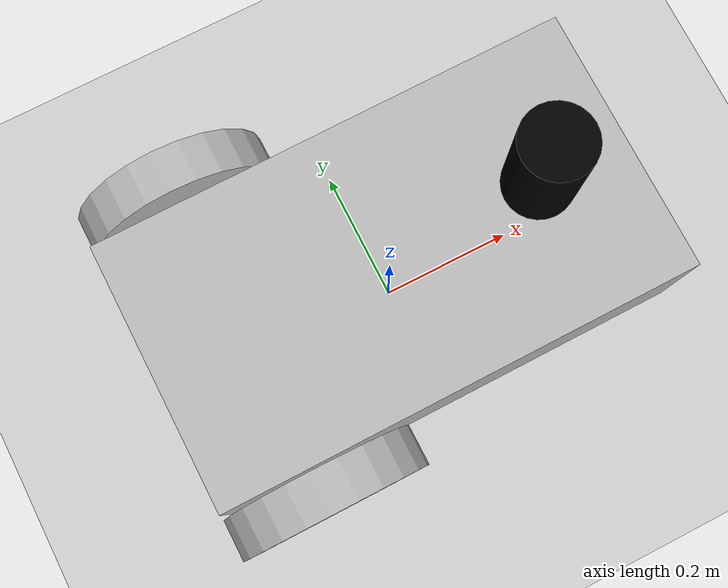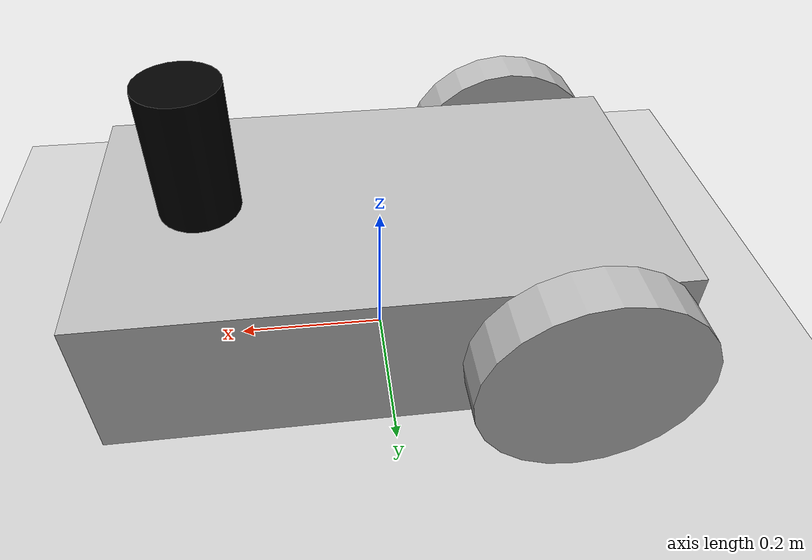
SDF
<sdf version="1.7">
 <world name="default">
  <light name="sun" type="directional">
   <pose>0 0 10 0 -0 0</pose>
   <diffuse>0.8 0.8 0.8 1</diffuse>
   <specular>0.2 0.2 0.2 1</specular>
   <attenuation>
    <range>1000</range>
    <constant>0.9</constant>
    <linear>0.01</linear>
    <quadratic>0.001</quadratic>
   </attenuation>
   <direction>-0.5 0.1 -0.9</direction>
   <spot><inner_angle>0</inner_angle><outer_angle>0</outer_angle><falloff>0</falloff></spot>
  </light>
  <model name="ground_plane">
   <static>1</static>
   <link name="link">
    <collision name="collision">
     <geometry><plane><normal>0 0 1</normal><size>100 100</size></plane></geometry>
     <surface><friction><ode><mu>100</mu><mu2>50</mu2></ode></friction></surface>
    </collision>
    <visual name="visual">
     <cast_shadows>0</cast_shadows>
     <geometry><plane><normal>0 0 1</normal><size>100 100</size></plane></geometry>
     <material>
      <script><uri>file://media/materials/scripts/gazebo.material</uri><name>Gazebo/Grey</name></script>
     </material>
    </visual>
   </link>
  </model>
  <gravity>0 0 -9.8</gravity>
  <magnetic_field>6e-06 2.3e-05 -4.2e-05</magnetic_field>
  <atmosphere type="adiabatic"/>
  <physics type="ode">
   <max_step_size>0.001</max_step_size>
   <real_time_factor>1</real_time_factor>
   <real_time_update_rate>1000</real_time_update_rate>
  </physics>
  <scene><ambient>0.4 0.4 0.4 1</ambient><background>0.7 0.7 0.7 1</background><shadows>1</shadows></scene>
  <spherical_coordinates>
   <surface_model>EARTH_WGS84</surface_model>
   <latitude_deg>0</latitude_deg>
   <longitude_deg>0</longitude_deg>
   <elevation>0</elevation>
   <heading_deg>0</heading_deg>
  </spherical_coordinates>
  <model name="simple_bot">
   <static>0</static>
   <pose>0.0075 0.001639 0.189987 -3e-06 6e-05 0.006014</pose>
   <link name="base_footprint">
    <inertial>
     <inertia><ixx>1</ixx><ixy>0</ixy><ixz>0</ixz><iyy>1</iyy><iyz>0</iyz><izz>1</izz></inertia>
     <mass>1</mass>
    </inertial>
   </link>
   <link name="base_link">
    <collision name="base_collision">
     <pose>0 0 0.1 0 -0 0</pose>
     <geometry><box><size>0.7 0.39 0.2</size></box></geometry>
    </collision>
    <visual name="base_visual">
     <pose>0 0 -0.05 1.5708 -0 -3.14159</pose>
     <geometry><box><size>0.7 0.2 0.39</size></box></geometry>
    </visual>
    <inertial>
     <inertia><ixx>1</ixx><ixy>0</ixy><ixz>0</ixz><iyy>1</iyy><iyz>0</iyz><izz>1</izz></inertia>
     <mass>1</mass>
    </inertial>
   </link>
   <link name="imu_link">
    <sensor name="bmb_imu" type="imu">
     <always_on>1</always_on>
     <update_rate>100</update_rate>
     <visualize>1</visualize>
     <imu>
      <angular_velocity>
       <x><noise type="gaussian"><mean>0</mean><stddev>0.0002</stddev></noise></x>
       <y><noise type="gaussian"><mean>0</mean><stddev>0.0002</stddev></noise></y>
       <z><noise type="gaussian"><mean>0</mean><stddev>0.0002</stddev></noise></z>
      </angular_velocity>
      <linear_acceleration>
       <x><noise type="gaussian"><mean>0</mean><stddev>0.017</stddev></noise></x>
       <y><noise type="gaussian"><mean>0</mean><stddev>0.017</stddev></noise></y>
       <z><noise type="gaussian"><mean>0</mean><stddev>0.017</stddev></noise></z>
      </linear_acceleration>
      <orientation>
       <x><noise type="gaussian"><mean>0.0</mean><stddev>2e-3</stddev></noise></x>
       <y><noise type="gaussian"><mean>0.0</mean><stddev>2e-3</stddev></noise></y>
       <z><noise type="gaussian"><mean>0.0</mean><stddev>2e-3</stddev></noise></z>
      </orientation>
     </imu>
     <plugin name="simple_bot_imu" filename="libgazebo_ros_imu_sensor.so">
      <initial_orientation_as_reference>0</initial_orientation_as_reference>
      <frame_name>imu_link</frame_name>
      <ros><namespace>/imu</namespace><remapping>~/out:=data</remapping></ros>
     </plugin>
    </sensor>
    <inertial>
     <inertia><ixx>1</ixx><ixy>0</ixy><ixz>0</ixz><iyy>1</iyy><iyz>0</iyz><izz>1</izz></inertia>
     <mass>1</mass>
    </inertial>
   </link>
   <link name="gps_link">
    <sensor name="bmb_gps" type="gps">
     <always_on>1</always_on>
     <update_rate>10</update_rate>
     <gps>
      <position_sensing>
       <horizontal><noise type="gaussian"><mean>0</mean><stddev>0.01</stddev></noise></horizontal>
       <vertical><noise type="gaussian"><mean>0</mean><stddev>1</stddev></noise></vertical>
      </position_sensing>
     </gps>
     <plugin name="sam_bot_gps" filename="libgazebo_ros_gps_sensor.so">
      <ros><remapping>~/out:=gps/fix</remapping></ros>
     </plugin>
    </sensor>
    <inertial>
     <inertia><ixx>1</ixx><ixy>0</ixy><ixz>0</ixz><iyy>1</iyy><iyz>0</iyz><izz>1</izz></inertia>
     <mass>1</mass>
    </inertial>
   </link>
   <link name="lidar_link">
    <inertial>
     <pose>0.215 0 0.13 0 -0 0</pose>
     <inertia><ixx>0.001</ixx><ixy>0</ixy><ixz>0</ixz><iyy>0.001</iyy><iyz>0</iyz><izz>0.001</izz></inertia>
     <mass>0.114</mass>
    </inertial>
    <collision name="lidar_collision">
     <pose>0.215 0 0.13 0 -0 0</pose>
     <geometry><cylinder><radius>0.0508</radius><length>0.18</length></cylinder></geometry>
    </collision>
    <visual name="lidar_visual">
     <pose>0.215 0 0.13 0 -0 0</pose>
     <geometry><cylinder><radius>0.0508</radius><length>0.18</length></cylinder></geometry>
     <material>
      <ambient>0 0 0 1</ambient>
      <diffuse>0 0 0 1</diffuse>
      <specular>0 0 0 1</specular>
      <emissive>0 0 0 1</emissive>
     </material>
    </visual>
    <sensor name="lidar" type="ray">
     <pose>0.215 0 0.215 0 -0 0</pose>
     <always_on>1</always_on>
     <visualize>1</visualize>
     <update_rate>5</update_rate>
     <ray>
      <scan>
       <horizontal>
        <samples>120</samples>
        <resolution>1</resolution>
        <min_angle>-3.14159</min_angle>
        <max_angle>3.14159</max_angle>
       </horizontal>
       <vertical><samples>1</samples><min_angle>0</min_angle><max_angle>0</max_angle></vertical>
      </scan>
      <range><min>0.3</min><max>15</max><resolution>0.015</resolution></range>
      <noise><type>gaussian</type><mean>0</mean><stddev>0.01</stddev></noise>
     </ray>
     <plugin name="scan" filename="libgazebo_ros_ray_sensor.so">
      <ros><remapping>~/out:=scan</remapping></ros>
      <output_type>sensor_msgs/LaserScan</output_type>
      <frame_name>lidar_link</frame_name>
     </plugin>
    </sensor>
   </link>
   <link name="left_wheel">
    <pose>-0.221 0.23 -0.05 3.14159 1.57079 -1.57079</pose>
    <collision name="left_wheel_collision">
     <geometry><cylinder><radius>0.14</radius><length>0.06</length></cylinder></geometry>
    </collision>
    <visual name="left_wheel_visual">
     <geometry><cylinder><radius>0.14</radius><length>0.06</length></cylinder></geometry>
    </visual>
    <inertial>
     <inertia><ixx>1</ixx><ixy>0</ixy><ixz>0</ixz><iyy>1</iyy><iyz>0</iyz><izz>1</izz></inertia>
     <mass>1</mass>
    </inertial>
   </link>
   <link name="right_wheel">
    <pose>-0.221 -0.23 -0.05 3.14159 1.57079 -1.57079</pose>
    <collision name="right_wheel_collision">
     <geometry><cylinder><radius>0.14</radius><length>0.06</length></cylinder></geometry>
    </collision>
    <visual name="right_wheel_visual">
     <geometry><cylinder><radius>0.14</radius><length>0.06</length></cylinder></geometry>
    </visual>
    <inertial>
     <inertia><ixx>1</ixx><ixy>0</ixy><ixz>0</ixz><iyy>1</iyy><iyz>0</iyz><izz>1</izz></inertia>
     <mass>1</mass>
    </inertial>
   </link>
   <link name="caster">
    <pose>0.217 0 -0.1 0 -0 0</pose>
    <inertial>
     <inertia><ixx>0.001</ixx><ixy>0</ixy><ixz>0</ixz><iyy>0.001</iyy><iyz>0</iyz><izz>0.001</izz></inertia>
     <mass>70</mass>
    </inertial>
    <collision name="collision">
     <geometry><sphere><radius>0.09</radius></sphere></geometry>
     <surface>
      <friction><ode><mu>0.01</mu><mu2>0.01</mu2><slip1>1</slip1><slip2>1</slip2></ode></friction>
     </surface>
    </collision>
    <visual name="caster_visual"><geometry><sphere><radius>0.09</radius></sphere></geometry></visual>
   </link>
   <joint name="base_joint" type="fixed"><parent>base_footprint</parent><child>base_link</child></joint>
   <joint name="left_wheel_hinge" type="revolute">
    <pose>0 0 -0.03 0 -0 0</pose>
    <child>left_wheel</child>
    <parent>base_link</parent>
    <axis>
     <xyz expressed_in="__model__">0 1 0</xyz>
     <limit><lower>-1e+16</lower><upper>1e+16</upper></limit>
     <dynamics><spring_reference>0</spring_reference><spring_stiffness>0</spring_stiffness></dynamics>
    </axis>
   </joint>
   <joint name="right_wheel_hinge" type="revolute">
    <pose>0 0 0.03 0 -0 0</pose>
    <child>right_wheel</child>
    <parent>base_link</parent>
    <axis>
     <xyz expressed_in="__model__">0 1 0</xyz>
     <limit><lower>-1e+16</lower><upper>1e+16</upper></limit>
     <dynamics><spring_reference>0</spring_reference><spring_stiffness>0</spring_stiffness></dynamics>
    </axis>
   </joint>
   <joint name="caster_wheel" type="fixed"><parent>base_link</parent><child>caster</child></joint>
   <joint name="imu_joint" type="fixed"><parent>base_link</parent><child>imu_link</child></joint>
   <joint name="gps_joint" type="fixed"><parent>base_link</parent><child>gps_link</child></joint>
   <joint name="lidar_joint" type="fixed"><parent>base_link</parent><child>lidar_link</child></joint>
   <plugin name="diff_drive" filename="libgazebo_ros_diff_drive.so">
    <update_rate>30</update_rate>
    <left_joint>left_wheel_hinge</left_joint>
    <right_joint>right_wheel_hinge</right_joint>
    <wheel_separation>0.26</wheel_separation>
    <wheel_diameter>0.2</wheel_diameter>
    <command_topic>cmd_vel</command_topic>
    <publish_odom>1</publish_odom>
    <publish_odom_tf>0</publish_odom_tf>
    <publish_wheel_tf>0</publish_wheel_tf>
    <odometry_topic>odom</odometry_topic>
    <odometry_frame>odom</odometry_frame>
    <robot_base_frame>base_footprint</robot_base_frame>
    <odometry_source>1</odometry_source>
    <ros><remapping>odom:=wheel/odometry</remapping></ros>
    <max_wheel_torque>20</max_wheel_torque>
    <max_wheel_acceleration>1.0</max_wheel_acceleration>
   </plugin>
   <plugin name="simple_bot_joint_state" filename="libgazebo_ros_joint_state_publisher.so">
    <ros><remapping>~/out:=joint_states</remapping></ros>
    <update_rate>30</update_rate>
    <joint_name>left_wheel_hinge</joint_name>
    <joint_name>right_wheel_hinge</joint_name>
   </plugin>
  </model>
 </world>
</sdf>
